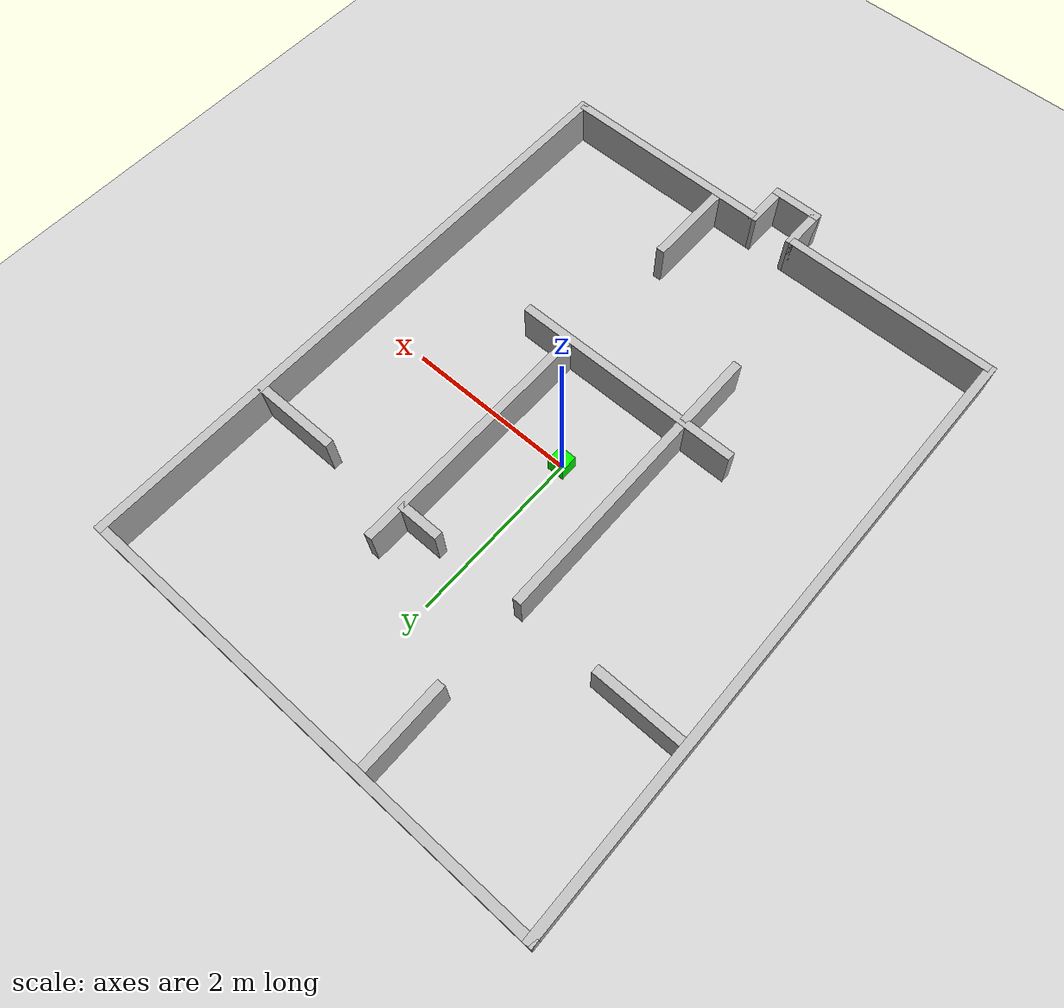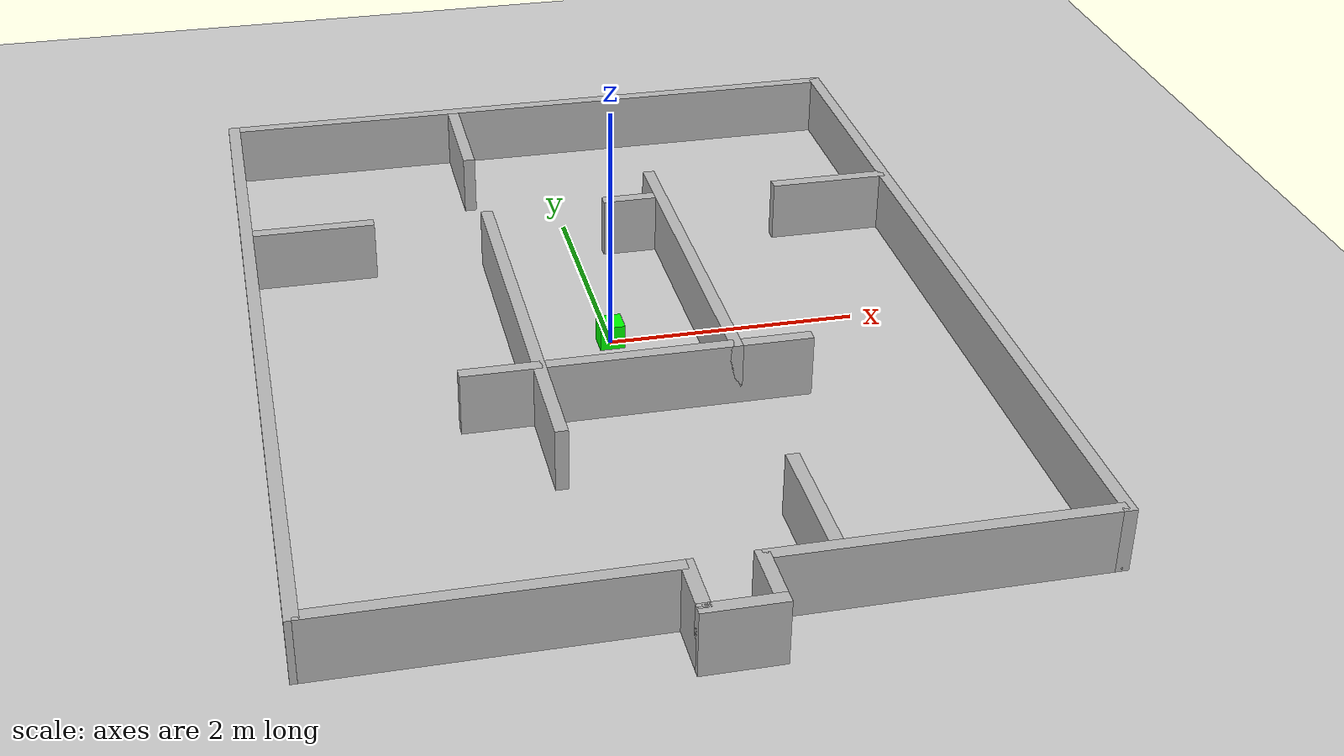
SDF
<sdf version="1.6">
 <world name="default">
  <include><uri>model://ground_plane</uri></include>
  <include><uri>model://sun</uri></include>
  <scene><shadows>false</shadows></scene>
  <physics type="ode">
   <real_time_update_rate>1000.0</real_time_update_rate>
   <max_step_size>0.001</max_step_size>
   <real_time_factor>1</real_time_factor>
  </physics>
  <model name="wall_north_left">
   <static>true</static>
   <link name="link">
    <collision name="collision"><geometry><box><size>5.6 0.1 0.5</size></box></geometry></collision>
    <visual name="visual"><geometry><box><size>5.6 0.1 0.5</size></box></geometry></visual>
    <pose>0 3.55 0.25 0 0 0</pose>
   </link>
  </model>
  <model name="wall_south_left">
   <static>true</static>
   <link name="link">
    <collision name="collision"><geometry><box><size>2.5 0.1 0.5</size></box></geometry></collision>
    <visual name="visual"><geometry><box><size>2.5 0.1 0.5</size></box></geometry></visual>
    <pose>-1.5 -3.55 0.25 0 0 0</pose>
   </link>
  </model>
  <model name="wall_south_right">
   <static>true</static>
   <link name="link">
    <collision name="collision"><geometry><box><size>2.5 0.1 0.5</size></box></geometry></collision>
    <visual name="visual"><geometry><box><size>2.5 0.1 0.5</size></box></geometry></visual>
    <pose>1.5 -3.55 0.25 0 0 0</pose>
   </link>
  </model>
  <model name="entry_nook">
   <static>true</static>
   <link name="link">
    <collision name="collision"><geometry><box><size>0.6 0.1 0.5</size></box></geometry></collision>
    <visual name="visual"><geometry><box><size>0.6 0.1 0.5</size></box></geometry></visual>
    <pose>0 -4 0.25 0 0 0</pose>
   </link>
  </model>
  <model name="entry_2">
   <static>true</static>
   <link name="link">
    <collision name="collision"><geometry><box><size>0.1 0.5 0.5</size></box></geometry></collision>
    <visual name="visual"><geometry><box><size>0.1 0.5 0.5</size></box></geometry></visual>
    <pose>-0.25 -3.75 0.25 0 0 0</pose>
   </link>
  </model>
  <model name="entry_1">
   <static>true</static>
   <link name="link">
    <collision name="collision"><geometry><box><size>0.1 0.5 0.5</size></box></geometry></collision>
    <visual name="visual"><geometry><box><size>0.1 0.5 0.5</size></box></geometry></visual>
    <pose>0.25 -3.75 0.25 0 0 0</pose>
   </link>
  </model>
  <model name="wall_east">
   <static>true</static>
   <link name="link">
    <collision name="collision"><geometry><box><size>0.1 7.2 0.5</size></box></geometry></collision>
    <visual name="visual"><geometry><box><size>0.1 7.2 0.5</size></box></geometry></visual>
    <pose>2.75 0 0.25 0 0 0</pose>
   </link>
  </model>
  <model name="wall_west">
   <static>true</static>
   <link name="link">
    <collision name="collision"><geometry><box><size>0.1 7.2 0.5</size></box></geometry></collision>
    <visual name="visual"><geometry><box><size>0.1 7.2 0.5</size></box></geometry></visual>
    <pose>-2.75 0 0.25 0 0 0</pose>
   </link>
  </model>
  <model name="inner_wall_5">
   <static>true</static>
   <link name="link">
    <collision name="collision"><geometry><box><size>0.1 1 0.5</size></box></geometry></collision>
    <visual name="visual"><geometry><box><size>0.1 1 0.5</size></box></geometry></visual>
    <pose>-0.75 3 0.25 0 0 0</pose>
   </link>
  </model>
  <model name="inner_wall_near_nook">
   <static>true</static>
   <link name="link">
    <collision name="collision"><geometry><box><size>0.1 1 0.5</size></box></geometry></collision>
    <visual name="visual"><geometry><box><size>0.1 1 0.5</size></box></geometry></visual>
    <pose>0.75 -3 0.25 0 0 0</pose>
   </link>
  </model>
  <model name="inner_wall_1">
   <static>true</static>
   <link name="link">
    <collision name="collision"><geometry><box><size>1 0.1 0.5</size></box></geometry></collision>
    <visual name="visual"><geometry><box><size>1 0.1 0.5</size></box></geometry></visual>
    <pose>-2.2 1.5 0.25 0 0 0</pose>
   </link>
  </model>
  <model name="inner_wall_2">
   <static>true</static>
   <link name="link">
    <collision name="collision"><geometry><box><size>2.7 0.1 0.5</size></box></geometry></collision>
    <visual name="visual"><geometry><box><size>2.7 0.1 0.5</size></box></geometry></visual>
    <pose>0 -1 0.25 0 0 0</pose>
   </link>
  </model>
  <model name="inner_wall_3">
   <static>true</static>
   <link name="link">
    <collision name="collision"><geometry><box><size>1 0.1 0.5</size></box></geometry></collision>
    <visual name="visual"><geometry><box><size>1 0.1 0.5</size></box></geometry></visual>
    <pose>2.25 1.5 0.25 0 0 0</pose>
   </link>
  </model>
  <model name="central_wall_3">
   <static>true</static>
   <link name="link">
    <collision name="collision"><geometry><box><size>1 0.1 0.5</size></box></geometry></collision>
    <visual name="visual"><geometry><box><size>1 0.1 0.5</size></box></geometry></visual>
    <pose>2.25 1.5 0.25 0 0 0</pose>
   </link>
  </model>
  <model name="central_wall_near_finish">
   <static>true</static>
   <link name="link">
    <collision name="collision"><geometry><box><size>0.5 0.1 0.5</size></box></geometry></collision>
    <visual name="visual"><geometry><box><size>0.5 0.1 0.5</size></box></geometry></visual>
    <pose>0.5 1.5 0.25 0 0 0</pose>
   </link>
  </model>
  <model name="inner_wall_6">
   <static>true</static>
   <link name="link">
    <collision name="collision"><geometry><box><size>0.1 3.4 0.5</size></box></geometry></collision>
    <visual name="visual"><geometry><box><size>0.1 3.4 0.5</size></box></geometry></visual>
    <pose>-0.75 -0.2 0.25 0 0 0</pose>
   </link>
  </model>
  <model name="central_wall_right">
   <static>true</static>
   <link name="link">
    <collision name="collision"><geometry><box><size>0.1 3 0.5</size></box></geometry></collision>
    <visual name="visual"><geometry><box><size>0.1 3 0.5</size></box></geometry></visual>
    <pose>0.75 0.45 0.25 0 0 0</pose>
   </link>
  </model>
  <model name="green_block">
   <pose>0 0 0.1 0 0 0</pose>
   <static>true</static>
   <link name="link">
    <visual name="visual">
     <geometry><box><size>0.2 0.2 0.2</size></box></geometry>
     <material><ambient>0 1 0 1</ambient><diffuse>0 1 0 1</diffuse></material>
    </visual>
   </link>
  </model>
 </world>
</sdf>
